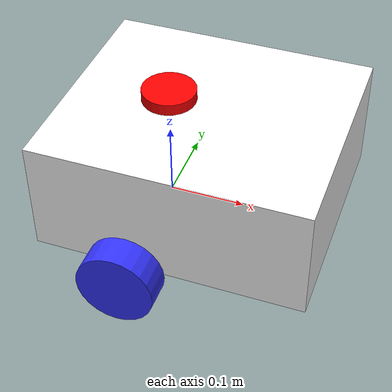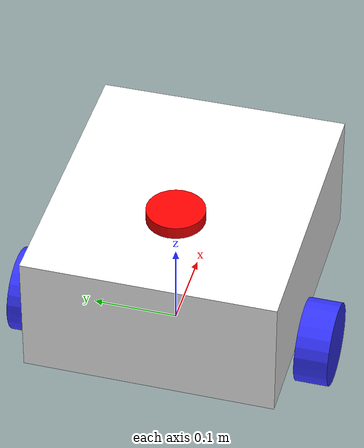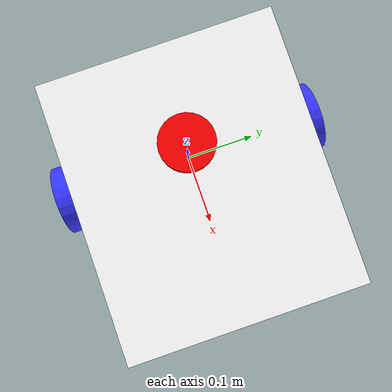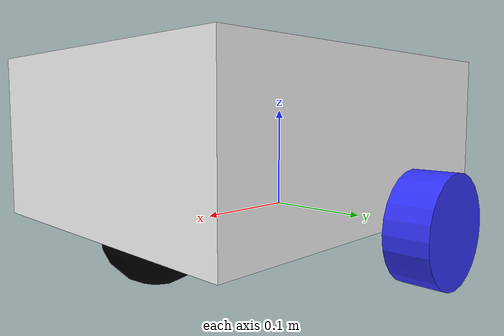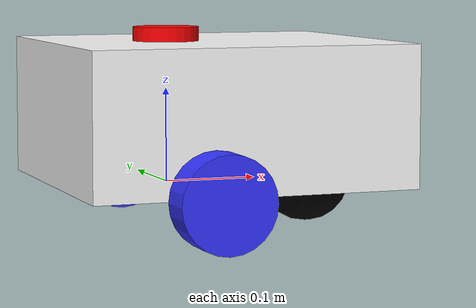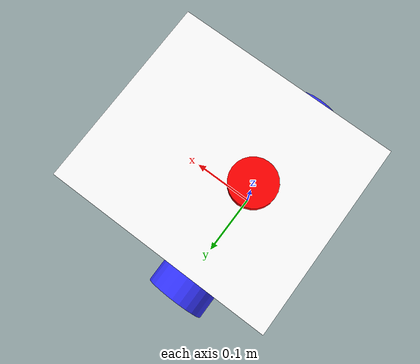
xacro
<?xml version="1.0"?>
<robot xmlns:xacro="http://www.ros.org/wiki/xacro"  name="robot">

    <xacro:include filename="robot_core.xacro" >
    </xacro:include>

     <xacro:include filename="gazebo_control.xacro" >
     </xacro:include >
     <xacro:include filename="lidar.xacro" >
     </xacro:include>

</robot >

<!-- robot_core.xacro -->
<robot xmlns:xacro="http://www.ros.org/wiki/xacro" >

    <xacro:include filename="inertial_macros.xacro"/>

     <material name="white">
        <color rgba="1 1 1 1" />
    </material>

    <material name="orange">
        <color rgba="1 0.3 0.1 1"/>
    </material>

    <material name="blue">
        <color rgba="0.2 0.2 1 1"/>
    </material>

    <material name="black">
        <color rgba="0 0 0 1"/>
    </material>

    <material name="red">
        <color rgba="1 0 0 1"/>
    </material>

    <!-- BASE LINK -->

    <link name="base_link">

    </link>
    <joint name="base_footprint_joint" type="fixed">
        <parent link="base_link"/>
        <child link="base_footprint"/>
        <origin xyz="0 0 0" rpy="0 0 0"/>
    </joint>
    <link name="base_footprint"></link>

    <!--base_link LINK-->

     <!-- CHASSIS LINK -->

    <joint name="chassis_joint" type="fixed">
        <parent link="base_link"/>
        <child link="chassis"/>
        <origin xyz="-0.1 0 0"/>
    </joint>

    <link name="chassis">
        <visual>
            <origin xyz="0.15 0 0.075"/>
            <geometry>
                <box size="0.35 0.3 0.15"/>
            </geometry>
            <material name="white"/>
        </visual>
        <collision>
            <origin xyz="0.15 0 0.075"/>
            <geometry>
                <box size="0.35 0.3 0.15"/>
            </geometry>
        </collision>
        <xacro:inertial_box mass="0.5" x="0.35" y="0.3" z="0.3">
            <origin xyz="0.15 0 -0.05" rpy="0 0 0"/>
        </xacro:inertial_box>
    </link>

    <gazebo reference="chassis">
        <material>Gazebo/Orange</material>

    </gazebo>

    <!-- LEFT WHEEL LINK -->

    <joint name="left_wheel_joint" type="continuous">
        <parent link="base_link"/>
        <child link="left_wheel"/>
        <origin xyz="0 0.175 0" rpy="-${pi/2} 0 0" />
        <axis xyz="0 0 1"/>
        <dynamics damping="1.0" friction="0.5"/>
    </joint>

    <link name="left_wheel">
        <visual>
            <geometry>
                <cylinder radius="0.05" length="0.04"/>
            </geometry>
            <material name="blue"/>
        </visual>
        <collision>
            <geometry>
                <cylinder radius="0.05" length="0.04"/>
            </geometry>
        </collision>
        <xacro:inertial_cylinder mass="0.5" length="0.04" radius="0.05">
            <origin xyz="0 0 0" rpy="0 0 0"/>
        </xacro:inertial_cylinder>
    </link>

    <gazebo reference="left_wheel">
        <material>Gazebo/Blue</material>
        <mu1>1.5</mu1>
        <mu2>1.5</mu2>
    </gazebo>

    <!-- RIGHT WHEEL LINK -->

    <joint name="right_wheel_joint" type="continuous">
        <parent link="base_link"/>
        <child link="right_wheel"/>
        <origin xyz="0 -0.175 0" rpy="${pi/2} 0 0" />
        <axis xyz="0 0 -1"/>
        <dynamics damping="1.0" friction="0.5"/>
    </joint>

    <link name="right_wheel">
        <visual>
            <geometry>
                <cylinder radius="0.05" length="0.04"/>
            </geometry>
            <material name="blue"/>
        </visual>
        <collision>
            <geometry>
                <cylinder radius="0.05" length="0.04"/>
            </geometry>
        </collision>
        <xacro:inertial_cylinder mass="0.5" length="0.04" radius="0.05">
            <origin xyz="0 0 0" rpy="0 0 0"/>
        </xacro:inertial_cylinder>
    </link>

    <gazebo reference="right_wheel">
        <material>Gazebo/Blue</material>
        <mu1>1.5</mu1>
        <mu2>1.5</mu2>
    </gazebo>

    <!-- CASTER WHEEL LINK -->

    <joint name="caster_wheel_joint" type="fixed">
        <parent link="chassis"/>
        <child link="caster_wheel"/>
        <origin xyz="0.26 0 0" rpy="${pi/2} 0 0" />
    </joint>

    <link name="caster_wheel">
        <visual>
            <geometry>
                <sphere radius="0.05"/>
            </geometry>
            <material name="black"/>
        </visual>
        <collision>
            <geometry>
                <sphere radius="0.05"/>
             </geometry>
        </collision>
        <xacro:inertial_sphere mass="0.5" radius="0.05">
            <origin xyz="0 0 0" rpy="0 0 0"/>
        </xacro:inertial_sphere>
    </link>

    <gazebo reference="caster_wheel">
        <material>Gazebo/white</material>
        <mu1 value="0.1"/>
        <mu2 value="0.1"/>

    </gazebo>

</robot>

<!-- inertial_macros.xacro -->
<robot xmlns:xacro="http://www.ros.org/wiki/xacro" >

    <!-- Specify some standard inertial calculations https://en.wikipedia.org/wiki/List_of_moments_of_inertia -->
    <!-- These make use of xacro's mathematical functionality -->

    <xacro:macro name="inertial_sphere" params="mass radius *origin">
        <inertial>
            <xacro:insert_block name="origin">
            </xacro:insert_block>
            <mass value="${mass}" />
            <inertia ixx="${(2/5) * mass * (radius*radius)}" ixy="0.0" ixz="0.0"
                    iyy="${(2/5) * mass * (radius*radius)}" iyz="0.0"
                    izz="${(2/5) * mass * (radius*radius)}" />
        </inertial>
    </xacro:macro>

    <xacro:macro name="inertial_box" params="mass x y z *origin">
        <inertial>
            <xacro:insert_block name="origin">
            </xacro:insert_block>
            <mass value="${mass}" />
            <inertia ixx="${(1/12) * mass * (y*y+z*z)}" ixy="0.0" ixz="0.0"
                    iyy="${(1/12) * mass * (x*x+z*z)}" iyz="0.0"
                    izz="${(1/12) * mass * (x*x+y*y)}" />
        </inertial>
    </xacro:macro>

    <xacro:macro name="inertial_cylinder" params="mass length radius *origin">
        <inertial>
            <xacro:insert_block name="origin">
            </xacro:insert_block>
            <mass value="${mass}" />
            <inertia ixx="${(1/12) * mass * (3*radius*radius + length*length)}" ixy="0.0" ixz="0.0"
                    iyy="${(1/12) * mass * (3*radius*radius + length*length)}" iyz="0.0"
                    izz="${(1/2) * mass * (radius*radius)}" />
        </inertial>
    </xacro:macro>

</robot>

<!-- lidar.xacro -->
<robot xmlns:xacro="http://www.ros.org/wiki/xacro">

   <joint name="laser_joint" type="fixed">
      <parent link="chassis"/>
      <child link="laser_frame"/>
      <origin xyz="0.1 0 0.15" rpy="0 0 0"/>
   </joint>

   <link name="laser_frame">
       <visual>
         <geometry>
            <cylinder  radius="0.035" length="0.03"/>
         </geometry>
         <material name="red"/>
       </visual>

        <collision>
         <geometry>
            <cylinder  radius="0.035" length="0.03"/>
         </geometry>
       </collision>

       <xacro:inertial_cylinder mass="0.1" length="0.03" radius="0.035" >
           <origin xyz="0 0 0" rpy="0 0 0"/>
       </xacro:inertial_cylinder>

   </link>
    <gazebo reference="laser_frame">
        <material>Gazebo/red</material>

        <sensor name="laser" type="ray">
            <pose> 0 0 0 0 0 0 </pose>
            <visualize>true</visualize>
            <update_rate>10</update_rate>
            <ray>
                <scan>
                    <horizontal>
                        <samples>360</samples>
                        <min_angle>-3.14</min_angle>
                        <max_angle>3.14</max_angle>
                    </horizontal>
                </scan>
                <range>
                    <min>0.3</min>
                    <max>12</max>
                </range>
            </ray>
            <plugin name="laser_controller" filename="libgazebo_ros_ray_sensor.so">
                <ros>
                    <argument>~/out:=scan</argument>
                </ros>
                <output_type>sensor_msgs/LaserScan</output_type>
                <frame_name>laser_frame</frame_name>
            </plugin>
        </sensor>
    </gazebo>

</robot>
